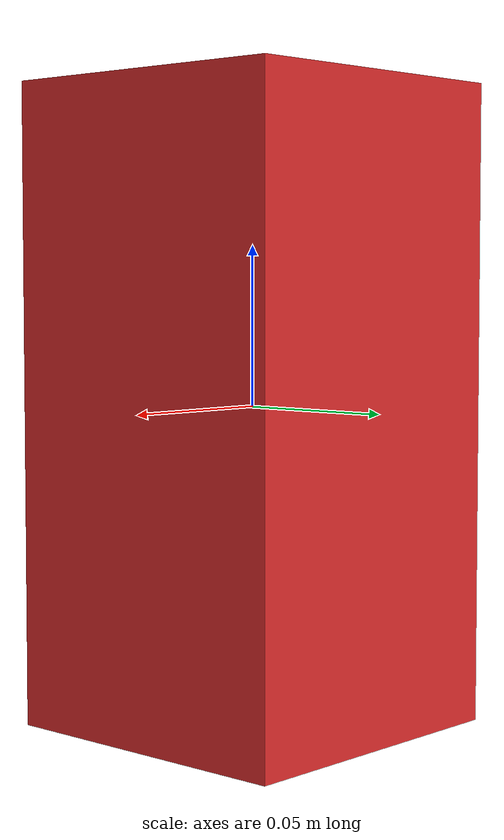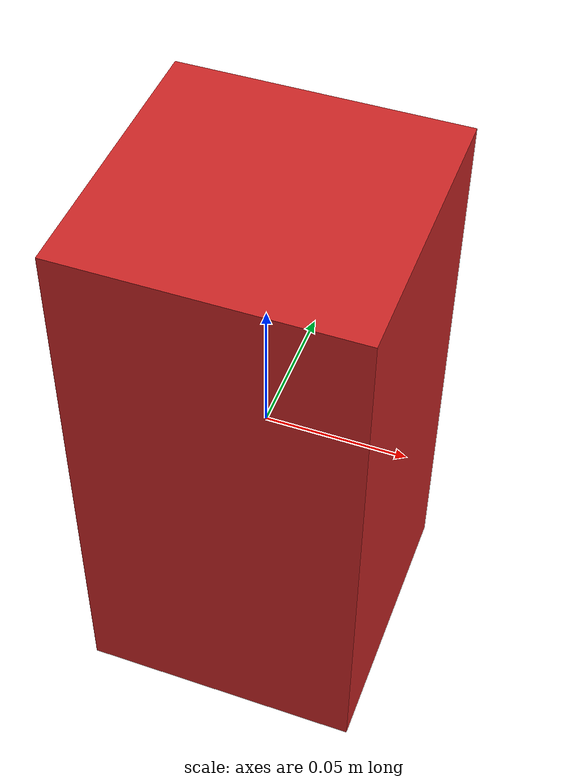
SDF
<?xml version='1.0'?>
<sdf version='1.7'>
<model name='object'>
      <link name='link'>
        <inertial>
          <mass>0.5</mass>
          <inertia>
            <ixx>0.0729167</ixx>
            <ixy>0</ixy>
            <ixz>0</ixz>
            <iyy>0.0729167</iyy>
            <iyz>0</iyz>
            <izz>0.0625</izz>
          </inertia>
          <pose>0 0 0 0 -0 0</pose>
        </inertial>
        <self_collide>0</self_collide>
        <enable_wind>0</enable_wind>
        <kinematic>0</kinematic>
        <pose>0 0 0 0 -0 0</pose>
        <gravity>1</gravity>
        <visual name='visual'>
          <geometry>
            <box>
              <size>0.1 0.1 0.2</size>
            </box>
          </geometry>
          <material>
            <script>
              <name>Gazebo/Red</name>
              <uri>file://media/materials/scripts/gazebo.material</uri>
            </script>
            <shader type='pixel'>
              <normal_map>__default__</normal_map>
            </shader>
            <ambient>1 0 0 1</ambient>
            <diffuse>1 0 0 1</diffuse>
            <specular>0.1 0.1 0.1 1</specular>
            <emissive>0 0 0 1</emissive>
          </material>
          <pose>0 0 0 0 -0 0</pose>
          <transparency>0</transparency>
          <cast_shadows>1</cast_shadows>
        </visual>
        <collision name='collision'>
          <laser_retro>0</laser_retro>
          <max_contacts>10</max_contacts>
          <pose>0 0 0 0 -0 0</pose>
          <geometry>
            <box>
              <size>0.1 0.1 0.2</size>
            </box>
          </geometry>
          <surface>
            <friction>
              <ode>
                <mu>1</mu>
                <mu2>1</mu2>
                <fdir1>0 0 0</fdir1>
                <slip1>0</slip1>
                <slip2>0</slip2>
              </ode>
              <torsional>
                <coefficient>1</coefficient>
                <patch_radius>0</patch_radius>
                <surface_radius>0</surface_radius>
                <use_patch_radius>1</use_patch_radius>
                <ode>
                  <slip>0</slip>
                </ode>
              </torsional>
            </friction>
            <bounce>
              <restitution_coefficient>0</restitution_coefficient>
              <threshold>1e+06</threshold>
            </bounce>
            <contact>
              <collide_without_contact>0</collide_without_contact>
              <collide_without_contact_bitmask>1</collide_without_contact_bitmask>
              <collide_bitmask>1</collide_bitmask>
              <ode>
                <soft_cfm>0</soft_cfm>
                <soft_erp>0.2</soft_erp>
                <kp>1e+13</kp>
                <kd>1</kd>
                <max_vel>0.01</max_vel>
                <min_depth>0</min_depth>
              </ode>
              <bullet>
                <split_impulse>1</split_impulse>
                <split_impulse_penetration_threshold>-0.01</split_impulse_penetration_threshold>
                <soft_cfm>0</soft_cfm>
                <soft_erp>0.2</soft_erp>
                <kp>1e+13</kp>
                <kd>1</kd>
              </bullet>
            </contact>
          </surface>
        </collision>
      </link>
      <static>0</static>
      <allow_auto_disable>1</allow_auto_disable>
    </model>
</sdf>
